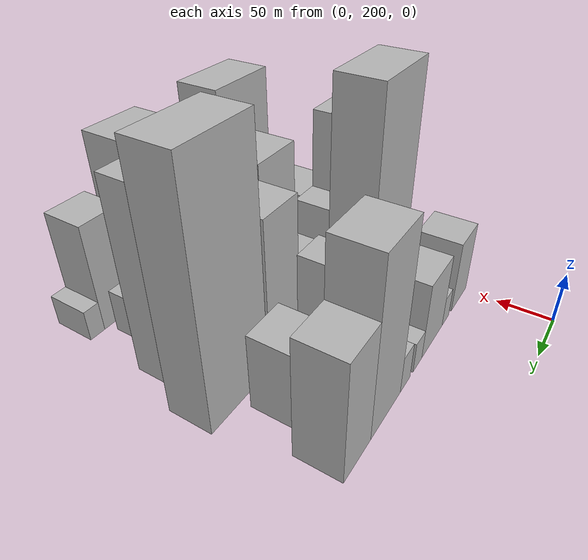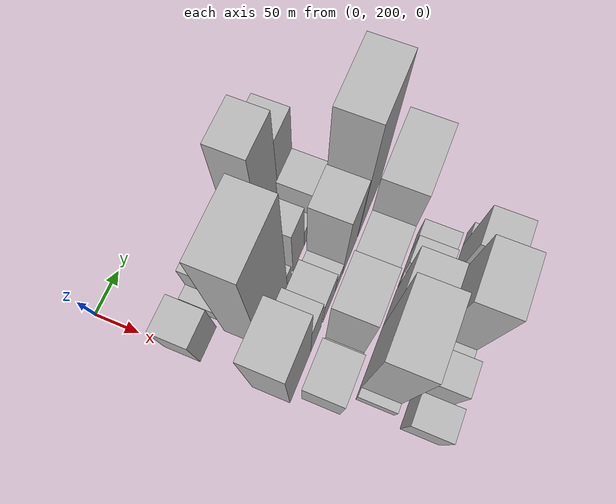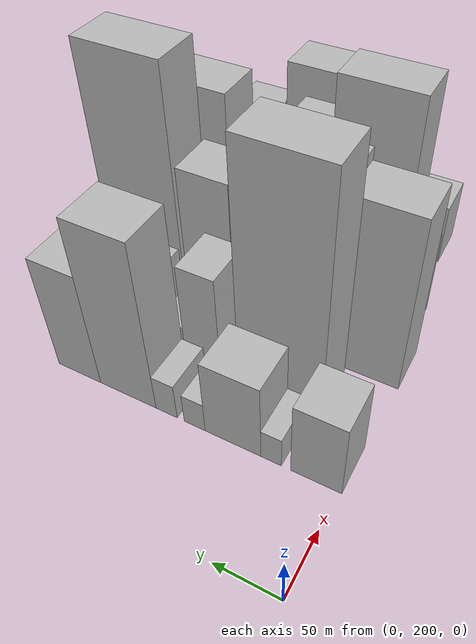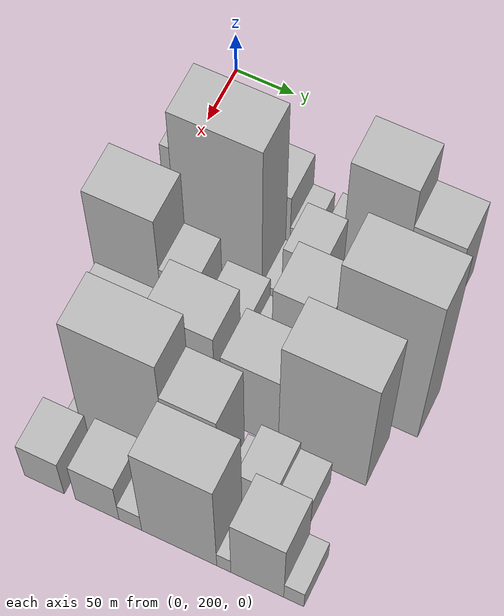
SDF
<sdf version="1.6">
 <world name="default">
  <model name="building_30">
   <static>1</static>
   <pose>100.0000 216.2023 0 0.000000 0.000000 0.000000</pose>
   <link name="link">
    <pose>0 0 36.00 0 0 0</pose>
    <collision name="collision"><geometry><box><size>40.0000 38.0775 72.0000</size></box></geometry></collision>
    <visual name="visual">
     <cast_shadows>0</cast_shadows>
     <geometry><box><size>40.0000 38.0775 72.0000</size></box></geometry>
     <material>
      <script>
       <uri>model://HANNAS_wall/materials/scripts</uri>
       <uri>model://HANNAS_wall/materials/textures</uri>
       <name>vrc/HANNAS_wall</name>
      </script>
     </material>
    </visual>
   </link>
  </model>
  <model name="building_31">
   <static>1</static>
   <pose>100.0000 250.1702 0 0.000000 0.000000 0.000000</pose>
   <link name="link">
    <pose>0 0 15.00 0 0 0</pose>
    <collision name="collision"><geometry><box><size>40.0000 15.8583 30.0000</size></box></geometry></collision>
    <visual name="visual">
     <cast_shadows>0</cast_shadows>
     <geometry><box><size>40.0000 15.8583 30.0000</size></box></geometry>
     <material>
      <script>
       <uri>model://HANNAS_wall/materials/scripts</uri>
       <uri>model://HANNAS_wall/materials/textures</uri>
       <name>vrc/HANNAS_wall</name>
      </script>
     </material>
    </visual>
   </link>
  </model>
  <model name="building_32">
   <static>1</static>
   <pose>100.0000 280.5941 0 0.000000 0.000000 0.000000</pose>
   <link name="link">
    <pose>0 0 37.50 0 0 0</pose>
    <collision name="collision"><geometry><box><size>40.0000 44.9895 75.0000</size></box></geometry></collision>
    <visual name="visual">
     <cast_shadows>0</cast_shadows>
     <geometry><box><size>40.0000 44.9895 75.0000</size></box></geometry>
     <material>
      <script>
       <uri>model://HANNAS_wall/materials/scripts</uri>
       <uri>model://HANNAS_wall/materials/textures</uri>
       <name>vrc/HANNAS_wall</name>
      </script>
     </material>
    </visual>
   </link>
  </model>
  <model name="building_33">
   <static>1</static>
   <pose>100.0000 311.9117 0 0.000000 0.000000 0.000000</pose>
   <link name="link">
    <pose>0 0 15.00 0 0 0</pose>
    <collision name="collision"><geometry><box><size>40.0000 17.6456 30.0000</size></box></geometry></collision>
    <visual name="visual">
     <cast_shadows>0</cast_shadows>
     <geometry><box><size>40.0000 17.6456 30.0000</size></box></geometry>
     <material>
      <script>
       <uri>model://HANNAS_wall/materials/scripts</uri>
       <uri>model://HANNAS_wall/materials/textures</uri>
       <name>vrc/HANNAS_wall</name>
      </script>
     </material>
    </visual>
   </link>
  </model>
  <model name="building_34">
   <static>1</static>
   <pose>100.0000 335.8827 0 0.000000 0.000000 0.000000</pose>
   <link name="link">
    <pose>0 0 18.00 0 0 0</pose>
    <collision name="collision"><geometry><box><size>40.0000 18.2963 36.0000</size></box></geometry></collision>
    <visual name="visual">
     <cast_shadows>0</cast_shadows>
     <geometry><box><size>40.0000 18.2963 36.0000</size></box></geometry>
     <material>
      <script>
       <uri>model://HANNAS_wall/materials/scripts</uri>
       <uri>model://HANNAS_wall/materials/textures</uri>
       <name>vrc/HANNAS_wall</name>
      </script>
     </material>
    </visual>
   </link>
  </model>
  <model name="building_35">
   <static>1</static>
   <pose>100.0000 370.0634 0 0.000000 0.000000 0.000000</pose>
   <link name="link">
    <pose>0 0 81.00 0 0 0</pose>
    <collision name="collision"><geometry><box><size>40.0000 50.0652 162.0000</size></box></geometry></collision>
    <visual name="visual">
     <cast_shadows>0</cast_shadows>
     <geometry><box><size>40.0000 50.0652 162.0000</size></box></geometry>
     <material>
      <script>
       <uri>model://HANNAS_wall/materials/scripts</uri>
       <uri>model://HANNAS_wall/materials/textures</uri>
       <name>vrc/HANNAS_wall</name>
      </script>
     </material>
    </visual>
   </link>
  </model>
  <model name="building_36">
   <static>1</static>
   <pose>100.0000 414.9326 0 0.000000 0.000000 0.000000</pose>
   <link name="link">
    <pose>0 0 55.50 0 0 0</pose>
    <collision name="collision"><geometry><box><size>40.0000 39.6732 111.0000</size></box></geometry></collision>
    <visual name="visual">
     <cast_shadows>0</cast_shadows>
     <geometry><box><size>40.0000 39.6732 111.0000</size></box></geometry>
     <material>
      <script>
       <uri>model://HANNAS_wall/materials/scripts</uri>
       <uri>model://HANNAS_wall/materials/textures</uri>
       <name>vrc/HANNAS_wall</name>
      </script>
     </material>
    </visual>
   </link>
  </model>
  <model name="building_77">
   <static>1</static>
   <pose>149.0000 269.0928 0 0.000000 0.000000 0.000000</pose>
   <link name="link">
    <pose>0 0 111.00 0 0 0</pose>
    <collision name="collision"><geometry><box><size>40.0000 68.8273 222.0000</size></box></geometry></collision>
    <visual name="visual">
     <cast_shadows>0</cast_shadows>
     <geometry><box><size>40.0000 68.8273 222.0000</size></box></geometry>
     <material>
      <script>
       <uri>model://HANNAS_wall/materials/scripts</uri>
       <uri>model://HANNAS_wall/materials/textures</uri>
       <name>vrc/HANNAS_wall</name>
      </script>
     </material>
    </visual>
   </link>
  </model>
  <model name="building_78">
   <static>1</static>
   <pose>149.0000 309.4140 0 0.000000 0.000000 0.000000</pose>
   <link name="link">
    <pose>0 0 13.50 0 0 0</pose>
    <collision name="collision"><geometry><box><size>40.0000 11.8151 27.0000</size></box></geometry></collision>
    <visual name="visual">
     <cast_shadows>0</cast_shadows>
     <geometry><box><size>40.0000 11.8151 27.0000</size></box></geometry>
     <material>
      <script>
       <uri>model://HANNAS_wall/materials/scripts</uri>
       <uri>model://HANNAS_wall/materials/textures</uri>
       <name>vrc/HANNAS_wall</name>
      </script>
     </material>
    </visual>
   </link>
  </model>
  <model name="building_79">
   <static>1</static>
   <pose>149.0000 334.7948 0 0.000000 0.000000 0.000000</pose>
   <link name="link">
    <pose>0 0 49.50 0 0 0</pose>
    <collision name="collision"><geometry><box><size>40.0000 30.9463 99.0000</size></box></geometry></collision>
    <visual name="visual">
     <cast_shadows>0</cast_shadows>
     <geometry><box><size>40.0000 30.9463 99.0000</size></box></geometry>
     <material>
      <script>
       <uri>model://HANNAS_wall/materials/scripts</uri>
       <uri>model://HANNAS_wall/materials/textures</uri>
       <name>vrc/HANNAS_wall</name>
      </script>
     </material>
    </visual>
   </link>
  </model>
  <model name="building_80">
   <static>1</static>
   <pose>149.0000 360.9140 0 0.000000 0.000000 0.000000</pose>
   <link name="link">
    <pose>0 0 18.00 0 0 0</pose>
    <collision name="collision"><geometry><box><size>40.0000 21.2920 36.0000</size></box></geometry></collision>
    <visual name="visual">
     <cast_shadows>0</cast_shadows>
     <geometry><box><size>40.0000 21.2920 36.0000</size></box></geometry>
     <material>
      <script>
       <uri>model://HANNAS_wall/materials/scripts</uri>
       <uri>model://HANNAS_wall/materials/textures</uri>
       <name>vrc/HANNAS_wall</name>
      </script>
     </material>
    </visual>
   </link>
  </model>
  <model name="building_81">
   <static>1</static>
   <pose>149.0000 395.6098 0 0.000000 0.000000 0.000000</pose>
   <link name="link">
    <pose>0 0 36.00 0 0 0</pose>
    <collision name="collision"><geometry><box><size>40.0000 40.0995 72.0000</size></box></geometry></collision>
    <visual name="visual">
     <cast_shadows>0</cast_shadows>
     <geometry><box><size>40.0000 40.0995 72.0000</size></box></geometry>
     <material>
      <script>
       <uri>model://HANNAS_wall/materials/scripts</uri>
       <uri>model://HANNAS_wall/materials/textures</uri>
       <name>vrc/HANNAS_wall</name>
      </script>
     </material>
    </visual>
   </link>
  </model>
  <model name="building_125">
   <static>1</static>
   <pose>198.0000 220.9483 0 0.000000 0.000000 0.000000</pose>
   <link name="link">
    <pose>0 0 82.50 0 0 0</pose>
    <collision name="collision"><geometry><box><size>40.0000 53.2965 165.0000</size></box></geometry></collision>
    <visual name="visual">
     <cast_shadows>0</cast_shadows>
     <geometry><box><size>40.0000 53.2965 165.0000</size></box></geometry>
     <material>
      <script>
       <uri>model://HANNAS_wall/materials/scripts</uri>
       <uri>model://HANNAS_wall/materials/textures</uri>
       <name>vrc/HANNAS_wall</name>
      </script>
     </material>
    </visual>
   </link>
  </model>
  <model name="building_126">
   <static>1</static>
   <pose>198.0000 261.6572 0 0.000000 0.000000 0.000000</pose>
   <link name="link">
    <pose>0 0 46.50 0 0 0</pose>
    <collision name="collision"><geometry><box><size>40.0000 28.1213 93.0000</size></box></geometry></collision>
    <visual name="visual">
     <cast_shadows>0</cast_shadows>
     <geometry><box><size>40.0000 28.1213 93.0000</size></box></geometry>
     <material>
      <script>
       <uri>model://HANNAS_wall/materials/scripts</uri>
       <uri>model://HANNAS_wall/materials/textures</uri>
       <name>vrc/HANNAS_wall</name>
      </script>
     </material>
    </visual>
   </link>
  </model>
  <model name="building_127">
   <static>1</static>
   <pose>198.0000 297.5882 0 0.000000 0.000000 0.000000</pose>
   <link name="link">
    <pose>0 0 31.50 0 0 0</pose>
    <collision name="collision"><geometry><box><size>40.0000 33.7406 63.0000</size></box></geometry></collision>
    <visual name="visual">
     <cast_shadows>0</cast_shadows>
     <geometry><box><size>40.0000 33.7406 63.0000</size></box></geometry>
     <material>
      <script>
       <uri>model://HANNAS_wall/materials/scripts</uri>
       <uri>model://HANNAS_wall/materials/textures</uri>
       <name>vrc/HANNAS_wall</name>
      </script>
     </material>
    </visual>
   </link>
  </model>
  <model name="building_128">
   <static>1</static>
   <pose>198.0000 324.5553 0 0.000000 0.000000 0.000000</pose>
   <link name="link">
    <pose>0 0 18.00 0 0 0</pose>
    <collision name="collision"><geometry><box><size>40.0000 20.1936 36.0000</size></box></geometry></collision>
    <visual name="visual">
     <cast_shadows>0</cast_shadows>
     <geometry><box><size>40.0000 20.1936 36.0000</size></box></geometry>
     <material>
      <script>
       <uri>model://HANNAS_wall/materials/scripts</uri>
       <uri>model://HANNAS_wall/materials/textures</uri>
       <name>vrc/HANNAS_wall</name>
      </script>
     </material>
    </visual>
   </link>
  </model>
  <model name="building_129">
   <static>1</static>
   <pose>198.0000 355.9904 0 0.000000 0.000000 0.000000</pose>
   <link name="link">
    <pose>0 0 70.50 0 0 0</pose>
    <collision name="collision"><geometry><box><size>40.0000 42.6764 141.0000</size></box></geometry></collision>
    <visual name="visual">
     <cast_shadows>0</cast_shadows>
     <geometry><box><size>40.0000 42.6764 141.0000</size></box></geometry>
     <material>
      <script>
       <uri>model://HANNAS_wall/materials/scripts</uri>
       <uri>model://HANNAS_wall/materials/textures</uri>
       <name>vrc/HANNAS_wall</name>
      </script>
     </material>
    </visual>
   </link>
  </model>
  <model name="building_130">
   <static>1</static>
   <pose>198.0000 415.3258 0 0.000000 0.000000 0.000000</pose>
   <link name="link">
    <pose>0 0 111.00 0 0 0</pose>
    <collision name="collision"><geometry><box><size>40.0000 69.9945 222.0000</size></box></geometry></collision>
    <visual name="visual">
     <cast_shadows>0</cast_shadows>
     <geometry><box><size>40.0000 69.9945 222.0000</size></box></geometry>
     <material>
      <script>
       <uri>model://HANNAS_wall/materials/scripts</uri>
       <uri>model://HANNAS_wall/materials/textures</uri>
       <name>vrc/HANNAS_wall</name>
      </script>
     </material>
    </visual>
   </link>
  </model>
  <model name="building_170">
   <static>1</static>
   <pose>247.0000 226.6523 0 0.000000 0.000000 0.000000</pose>
   <link name="link">
    <pose>0 0 40.50 0 0 0</pose>
    <collision name="collision"><geometry><box><size>40.0000 48.2104 81.0000</size></box></geometry></collision>
    <visual name="visual">
     <cast_shadows>0</cast_shadows>
     <geometry><box><size>40.0000 48.2104 81.0000</size></box></geometry>
     <material>
      <script>
       <uri>model://HANNAS_wall/materials/scripts</uri>
       <uri>model://HANNAS_wall/materials/textures</uri>
       <name>vrc/HANNAS_wall</name>
      </script>
     </material>
    </visual>
   </link>
  </model>
  <model name="building_171">
   <static>1</static>
   <pose>247.0000 258.5172 0 0.000000 0.000000 0.000000</pose>
   <link name="link">
    <pose>0 0 10.50 0 0 0</pose>
    <collision name="collision"><geometry><box><size>40.0000 9.5194 21.0000</size></box></geometry></collision>
    <visual name="visual">
     <cast_shadows>0</cast_shadows>
     <geometry><box><size>40.0000 9.5194 21.0000</size></box></geometry>
     <material>
      <script>
       <uri>model://HANNAS_wall/materials/scripts</uri>
       <uri>model://HANNAS_wall/materials/textures</uri>
       <name>vrc/HANNAS_wall</name>
      </script>
     </material>
    </visual>
   </link>
  </model>
  <model name="building_172">
   <static>1</static>
   <pose>247.0000 288.9874 0 0.000000 0.000000 0.000000</pose>
   <link name="link">
    <pose>0 0 70.50 0 0 0</pose>
    <collision name="collision"><geometry><box><size>40.0000 51.4208 141.0000</size></box></geometry></collision>
    <visual name="visual">
     <cast_shadows>0</cast_shadows>
     <geometry><box><size>40.0000 51.4208 141.0000</size></box></geometry>
     <material>
      <script>
       <uri>model://HANNAS_wall/materials/scripts</uri>
       <uri>model://HANNAS_wall/materials/textures</uri>
       <name>vrc/HANNAS_wall</name>
      </script>
     </material>
    </visual>
   </link>
  </model>
  <model name="building_173">
   <static>1</static>
   <pose>247.0000 341.6644 0 0.000000 0.000000 0.000000</pose>
   <link name="link">
    <pose>0 0 58.50 0 0 0</pose>
    <collision name="collision"><geometry><box><size>40.0000 43.9334 117.0000</size></box></geometry></collision>
    <visual name="visual">
     <cast_shadows>0</cast_shadows>
     <geometry><box><size>40.0000 43.9334 117.0000</size></box></geometry>
     <material>
      <script>
       <uri>model://HANNAS_wall/materials/scripts</uri>
       <uri>model://HANNAS_wall/materials/textures</uri>
       <name>vrc/HANNAS_wall</name>
      </script>
     </material>
    </visual>
   </link>
  </model>
  <model name="building_174">
   <static>1</static>
   <pose>247.0000 397.8898 0 0.000000 0.000000 0.000000</pose>
   <link name="link">
    <pose>0 0 88.50 0 0 0</pose>
    <collision name="collision"><geometry><box><size>40.0000 68.5173 177.0000</size></box></geometry></collision>
    <visual name="visual">
     <cast_shadows>0</cast_shadows>
     <geometry><box><size>40.0000 68.5173 177.0000</size></box></geometry>
     <material>
      <script>
       <uri>model://HANNAS_wall/materials/scripts</uri>
       <uri>model://HANNAS_wall/materials/textures</uri>
       <name>vrc/HANNAS_wall</name>
      </script>
     </material>
    </visual>
   </link>
  </model>
  <model name="building_218">
   <static>1</static>
   <pose>296.0000 226.6679 0 0.000000 0.000000 0.000000</pose>
   <link name="link">
    <pose>0 0 12.00 0 0 0</pose>
    <collision name="collision"><geometry><box><size>40.0000 9.7314 24.0000</size></box></geometry></collision>
    <visual name="visual">
     <cast_shadows>0</cast_shadows>
     <geometry><box><size>40.0000 9.7314 24.0000</size></box></geometry>
     <material>
      <script>
       <uri>model://HANNAS_wall/materials/scripts</uri>
       <uri>model://HANNAS_wall/materials/textures</uri>
       <name>vrc/HANNAS_wall</name>
      </script>
     </material>
    </visual>
   </link>
  </model>
  <model name="building_219">
   <static>1</static>
   <pose>296.0000 265.6899 0 0.000000 0.000000 0.000000</pose>
   <link name="link">
    <pose>0 0 93.00 0 0 0</pose>
    <collision name="collision"><geometry><box><size>40.0000 68.3125 186.0000</size></box></geometry></collision>
    <visual name="visual">
     <cast_shadows>0</cast_shadows>
     <geometry><box><size>40.0000 68.3125 186.0000</size></box></geometry>
     <material>
      <script>
       <uri>model://HANNAS_wall/materials/scripts</uri>
       <uri>model://HANNAS_wall/materials/textures</uri>
       <name>vrc/HANNAS_wall</name>
      </script>
     </material>
    </visual>
   </link>
  </model>
  <model name="building_220">
   <static>1</static>
   <pose>296.0000 320.5535 0 0.000000 0.000000 0.000000</pose>
   <link name="link">
    <pose>0 0 67.50 0 0 0</pose>
    <collision name="collision"><geometry><box><size>40.0000 41.4147 135.0000</size></box></geometry></collision>
    <visual name="visual">
     <cast_shadows>0</cast_shadows>
     <geometry><box><size>40.0000 41.4147 135.0000</size></box></geometry>
     <material>
      <script>
       <uri>model://HANNAS_wall/materials/scripts</uri>
       <uri>model://HANNAS_wall/materials/textures</uri>
       <name>vrc/HANNAS_wall</name>
      </script>
     </material>
    </visual>
   </link>
  </model>
  <model name="building_221">
   <static>1</static>
   <pose>296.0000 349.4481 0 0.000000 0.000000 0.000000</pose>
   <link name="link">
    <pose>0 0 12.00 0 0 0</pose>
    <collision name="collision"><geometry><box><size>40.0000 10.3746 24.0000</size></box></geometry></collision>
    <visual name="visual">
     <cast_shadows>0</cast_shadows>
     <geometry><box><size>40.0000 10.3746 24.0000</size></box></geometry>
     <material>
      <script>
       <uri>model://HANNAS_wall/materials/scripts</uri>
       <uri>model://HANNAS_wall/materials/textures</uri>
       <name>vrc/HANNAS_wall</name>
      </script>
     </material>
    </visual>
   </link>
  </model>
  <model name="building_222">
   <static>1</static>
   <pose>296.0000 369.5818 0 0.000000 0.000000 0.000000</pose>
   <link name="link">
    <pose>0 0 27.00 0 0 0</pose>
    <collision name="collision"><geometry><box><size>40.0000 29.8928 54.0000</size></box></geometry></collision>
    <visual name="visual">
     <cast_shadows>0</cast_shadows>
     <geometry><box><size>40.0000 29.8928 54.0000</size></box></geometry>
     <material>
      <script>
       <uri>model://HANNAS_wall/materials/scripts</uri>
       <uri>model://HANNAS_wall/materials/textures</uri>
       <name>vrc/HANNAS_wall</name>
      </script>
     </material>
    </visual>
   </link>
  </model>
  <model name="building_223">
   <static>1</static>
   <pose>296.0000 396.5552 0 0.000000 0.000000 0.000000</pose>
   <link name="link">
    <pose>0 0 21.00 0 0 0</pose>
    <collision name="collision"><geometry><box><size>40.0000 24.0541 42.0000</size></box></geometry></collision>
    <visual name="visual">
     <cast_shadows>0</cast_shadows>
     <geometry><box><size>40.0000 24.0541 42.0000</size></box></geometry>
     <material>
      <script>
       <uri>model://HANNAS_wall/materials/scripts</uri>
       <uri>model://HANNAS_wall/materials/textures</uri>
       <name>vrc/HANNAS_wall</name>
      </script>
     </material>
    </visual>
   </link>
  </model>
  <model name="building_270">
   <static>1</static>
   <pose>345.0000 227.8057 0 0.000000 0.000000 0.000000</pose>
   <link name="link">
    <pose>0 0 30.00 0 0 0</pose>
    <collision name="collision"><geometry><box><size>40.0000 31.6350 60.0000</size></box></geometry></collision>
    <visual name="visual">
     <cast_shadows>0</cast_shadows>
     <geometry><box><size>40.0000 31.6350 60.0000</size></box></geometry>
     <material>
      <script>
       <uri>model://HANNAS_wall/materials/scripts</uri>
       <uri>model://HANNAS_wall/materials/textures</uri>
       <name>vrc/HANNAS_wall</name>
      </script>
     </material>
    </visual>
   </link>
  </model>
  <model name="building_271">
   <static>1</static>
   <pose>345.0000 269.8867 0 0.000000 0.000000 0.000000</pose>
   <link name="link">
    <pose>0 0 33.00 0 0 0</pose>
    <collision name="collision"><geometry><box><size>40.0000 34.5269 66.0000</size></box></geometry></collision>
    <visual name="visual">
     <cast_shadows>0</cast_shadows>
     <geometry><box><size>40.0000 34.5269 66.0000</size></box></geometry>
     <material>
      <script>
       <uri>model://HANNAS_wall/materials/scripts</uri>
       <uri>model://HANNAS_wall/materials/textures</uri>
       <name>vrc/HANNAS_wall</name>
      </script>
     </material>
    </visual>
   </link>
  </model>
  <model name="building_272">
   <static>1</static>
   <pose>345.0000 296.0412 0 0.000000 0.000000 0.000000</pose>
   <link name="link">
    <pose>0 0 15.00 0 0 0</pose>
    <collision name="collision"><geometry><box><size>40.0000 17.7821 30.0000</size></box></geometry></collision>
    <visual name="visual">
     <cast_shadows>0</cast_shadows>
     <geometry><box><size>40.0000 17.7821 30.0000</size></box></geometry>
     <material>
      <script>
       <uri>model://HANNAS_wall/materials/scripts</uri>
       <uri>model://HANNAS_wall/materials/textures</uri>
       <name>vrc/HANNAS_wall</name>
      </script>
     </material>
    </visual>
   </link>
  </model>
  <model name="building_273">
   <static>1</static>
   <pose>345.0000 334.1423 0 0.000000 0.000000 0.000000</pose>
   <link name="link">
    <pose>0 0 78.00 0 0 0</pose>
    <collision name="collision"><geometry><box><size>40.0000 58.4200 156.0000</size></box></geometry></collision>
    <visual name="visual">
     <cast_shadows>0</cast_shadows>
     <geometry><box><size>40.0000 58.4200 156.0000</size></box></geometry>
     <material>
      <script>
       <uri>model://HANNAS_wall/materials/scripts</uri>
       <uri>model://HANNAS_wall/materials/textures</uri>
       <name>vrc/HANNAS_wall</name>
      </script>
     </material>
    </visual>
   </link>
  </model>
  <model name="building_274">
   <static>1</static>
   <pose>345.0000 368.7810 0 0.000000 0.000000 0.000000</pose>
   <link name="link">
    <pose>0 0 13.50 0 0 0</pose>
    <collision name="collision"><geometry><box><size>40.0000 10.8574 27.0000</size></box></geometry></collision>
    <visual name="visual">
     <cast_shadows>0</cast_shadows>
     <geometry><box><size>40.0000 10.8574 27.0000</size></box></geometry>
     <material>
      <script>
       <uri>model://HANNAS_wall/materials/scripts</uri>
       <uri>model://HANNAS_wall/materials/textures</uri>
       <name>vrc/HANNAS_wall</name>
      </script>
     </material>
    </visual>
   </link>
  </model>
  <model name="building_275">
   <static>1</static>
   <pose>345.0000 394.4286 0 0.000000 0.000000 0.000000</pose>
   <link name="link">
    <pose>0 0 52.50 0 0 0</pose>
    <collision name="collision"><geometry><box><size>40.0000 40.4378 105.0000</size></box></geometry></collision>
    <visual name="visual">
     <cast_shadows>0</cast_shadows>
     <geometry><box><size>40.0000 40.4378 105.0000</size></box></geometry>
     <material>
      <script>
       <uri>model://HANNAS_wall/materials/scripts</uri>
       <uri>model://HANNAS_wall/materials/textures</uri>
       <name>vrc/HANNAS_wall</name>
      </script>
     </material>
    </visual>
   </link>
  </model>
  <model name="building_276">
   <static>1</static>
   <pose>345.0000 422.2608 0 0.000000 0.000000 0.000000</pose>
   <link name="link">
    <pose>0 0 15.00 0 0 0</pose>
    <collision name="collision"><geometry><box><size>40.0000 15.2267 30.0000</size></box></geometry></collision>
    <visual name="visual">
     <cast_shadows>0</cast_shadows>
     <geometry><box><size>40.0000 15.2267 30.0000</size></box></geometry>
     <material>
      <script>
       <uri>model://HANNAS_wall/materials/scripts</uri>
       <uri>model://HANNAS_wall/materials/textures</uri>
       <name>vrc/HANNAS_wall</name>
      </script>
     </material>
    </visual>
   </link>
  </model>
 </world>
</sdf>
